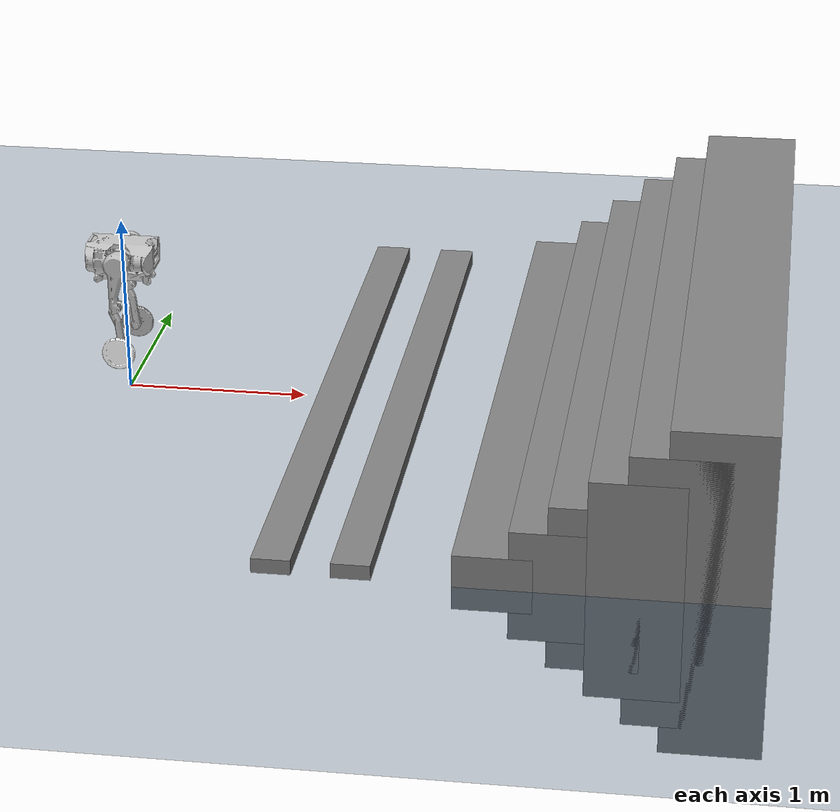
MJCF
<mujoco model="ddt scene">
  <include file="robot.xml"/>

  <statistic center="0 0 0.1" extent="0.8"/>

  <visual>
    <headlight diffuse="0.6 0.6 0.6" ambient="0.3 0.3 0.3" specular="0 0 0"/>
    <rgba haze="0.15 0.25 0.35 1"/>
    <global azimuth="-130" elevation="-20"/>
  </visual>

  <asset>
    <texture type="skybox" builtin="gradient" rgb1="0.3 0.5 0.7" rgb2="0 0 0" width="512" height="3072"/>
    <texture type="2d" name="groundplane" builtin="checker" mark="edge" rgb1="0.2 0.3 0.4" rgb2="0.1 0.2 0.3"
      markrgb="0.8 0.8 0.8" width="300" height="300"/>
    <material name="groundplane" texture="groundplane" texuniform="true" texrepeat="5 5" reflectance="0.2"/>
  </asset>

  <worldbody>
    <light pos="0 0 1.5" dir="0 0 -1" directional="true"/>
    <geom name="floor" size="0 0 0.05" type="plane" material="groundplane"/>

    <geom pos="1.2 0 0.04" type="box"  size="0.1 2 0.04" quat="1.0 0 0 0"/>
    <geom pos="1.6 0 0.04" type="box"  size="0.1 2 0.04" quat="1.0 0 0 0"/>

    <geom pos="2.3 0 0.02" type="box"  size="0.2 2 0.15" quat="1.0 0 0 0"/>
    <geom pos="2.6 0 0.02" type="box"  size="0.22 2 0.3" quat="1.0 0 0 0"/>
    <geom pos="2.8 0 0.02" type="box"  size="0.23 2 0.45" quat="1.0 0 0 0"/>
    <geom pos="3 0 0.02" type="box"  size="0.24 2 0.6" quat="1.0 0 0 0"/>
    <geom pos="3.2 0 0.02" type="box"  size="0.25 2 0.75" quat="1.0 0 0 0"/>
    <geom pos="3.4 0 0.02" type="box"  size="0.26 2 0.9" quat="1.0 0 0 0"/>
  </worldbody>
</mujoco>

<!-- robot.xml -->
<mujoco model="d1h_description">
  <compiler angle="radian" meshdir="../meshes/" autolimits="true" />
  <option cone="elliptic" impratio="100" />
  <default>
    <default class="d1h">
      <geom friction="0.4" margin="0.001" condim="1"/>
      <joint axis="0 1 0" damping="0.1" armature="0.01" frictionloss="0.2"/>
      <default class="visual">
        <geom type="mesh" contype="0" conaffinity="0" group="2" density="0"/>
      </default>
      <default class="collision">
        <geom group="3" />
      </default>
    </default>
  </default>

  <asset>
    <mesh name="base_link" file="base_link.STL"/>
    <mesh name="funtion_Link" file="funtion_Link.STL"/>
    <mesh name="docking_Link" file="docking_Link.STL"/>
    <mesh name="L_hip" file="L_hip.STL"/>
    <mesh name="L_thigh" file="L_thigh.STL"/>
    <mesh name="L_calf" file="L_calf.STL"/>
    <mesh name="L_foot" file="L_foot.STL"/>
    <mesh name="R_hip" file="R_hip.STL"/>
    <mesh name="R_thigh" file="R_thigh.STL"/>
    <mesh name="R_calf" file="R_calf.STL"/>
    <mesh name="R_foot" file="R_foot.STL"/>
  </asset>

  <worldbody>
    <body name="base_link" pos="0 0 0.8" childclass="d1h">
      <inertial pos="0.00652471 0.00180904 -0.0146554" quat="0.00501199 0.705938 -0.0170284 0.708051" mass="11.3274" diaginertia="0.231094 0.222595 0.0974676"/>
      <site name="trunk_imu" size="0.01"/>
      <joint name="floating_base_joint" type="free" limited="false" actuatorfrclimited="false"/>
      <geom type="mesh" class="visual" rgba="0.75294 0.75294 0.75294 1" mesh="base_link"/>
      <geom size="0.1375 0.075 0.0875" type="box" class="collision" rgba="0.75294 0.75294 0.75294 1"/>
      <geom size="0.155 0.06 0.03" pos="0 0 -0.12" type="box" class="collision" rgba="0.75294 0.75294 0.75294 1"/>
      <geom pos="0.1545 0 0" quat="1 0 0 0" type="mesh" rgba="0.75294 0.75294 0.75294 1" mesh="funtion_Link"/>
      <geom size="0.02475 0.075 0.0875" pos="0.1625 0 0" type="box" class="collision" rgba="0.75294 0.75294 0.75294 1"/>
      <geom pos="-0.187 0 0" quat="1 0 0 0" type="mesh" rgba="0.75294 0.75294 0.75294 1" mesh="docking_Link"/>
      <geom size="0.04255 0.075 0.0875" pos="-0.1805 0 0" type="box" class="collision" rgba="0.75294 0.75294 0.75294 1"/>
      <body name="FL_hip" pos="0.0945 0.0775 0" quat="0.499998 0.5 0.500002 0.5">
        <inertial pos="-0.0181435 -7.96e-06 -0.0936513" quat="0.999969 0.002505 0.00743808 -9.41679e-05" mass="1.69464" diaginertia="0.00379302 0.0027607 0.00214447"/>
        <joint name="FL_hip_joint" pos="0 0 0" axis="0 0 1" range="-0.785398 0.785398" actuatorfrcrange="-80 80"/>
        <geom type="mesh" class="visual" rgba="0.75294 0.75294 0.75294 1" mesh="L_hip"/>
        <body name="FL_thigh" pos="0.0905 0 -0.0945" quat="0.500098 -0.5001 0.499902 -0.4999">
          <inertial pos="0.0289509 0.00356333 -0.0281156" quat="-0.0769104 0.652025 5.23527e-05 0.754286" mass="2.55232" diaginertia="0.0182972 0.0174693 0.00380065"/>
          <joint name="FL_thigh_joint" pos="0 0 0" axis="0 0 1" range="-1.8326 3.40339" actuatorfrcrange="-80 80"/>
          <geom type="mesh" class="visual" rgba="0.75294 0.75294 0.75294 1" mesh="L_thigh"/>
          <geom size="0.13 0.045 0.025" pos="0.06 0.02 0" quat="0.991445 0 0 0.130526" type="box" class="collision" rgba="0.75294 0.75294 0.75294 1"/>
          <body name="FL_calf" pos="0.25 0 0">
            <inertial pos="0.125063 0.00606587 0.00312587" quat="-0.0425827 0.690156 -0.0920102 0.716523" mass="0.46345" diaginertia="0.00494513 0.00490922 0.000208685"/>
            <joint name="FL_calf_joint" pos="0 0 0" axis="0 0 1" range="-2.775 -0.855" actuatorfrcrange="-80 80"/>
            <geom type="mesh" class="visual" rgba="0.75294 0.75294 0.75294 1" mesh="L_calf"/>
            <geom size="0.12 0.02 0.025" pos="0.15 0.01 0" quat="0.9992 0 0 -0.0399893" type="box" class="collision" rgba="0.75294 0.75294 0.75294 1"/>
            <body name="FL_foot" pos="0.25 0 0.052166">
              <inertial pos="-2.82e-06 0 -0.00091845" quat="0.334356 0.623085 -0.334302 0.623067" mass="1.6631" diaginertia="0.00760863 0.00398501 0.00393673"/>
              <joint name="FL_foot_joint" pos="0 0 0" axis="0 0 1" range="-1000000 1000000" actuatorfrcrange="-12 12"/>
              <geom type="mesh" class="visual" rgba="0.698039 0.698039 0.698039 1" mesh="L_foot"/>
              <geom size="0.087 0.02" type="cylinder" class="collision" rgba="0.698039 0.698039 0.698039 1"/>
            </body>
          </body>
        </body>
      </body>
      <body name="FR_hip" pos="0.0945 -0.0775 0" quat="0.499998 0.5 0.500002 0.5">
        <inertial pos="0.0181435 -8e-06 -0.0936513" quat="0.999969 0.002505 -0.00743808 9.41679e-05" mass="1.69464" diaginertia="0.00379302 0.0027607 0.00214447"/>
        <joint name="FR_hip_joint" pos="0 0 0" axis="0 0 1" range="-0.785398 0.785398" actuatorfrcrange="-80 80"/>
        <geom type="mesh" class="visual" rgba="0.75294 0.75294 0.75294 1" mesh="R_hip"/>
        <body name="FR_thigh" pos="-0.0905 0 -0.0945" quat="0.499898 -0.4999 0.500102 -0.5001">
          <inertial pos="0.0291816 0.00370278 0.0281157" quat="0.00133055 0.754556 0.0787582 0.651491" mass="2.55232" diaginertia="0.0182666 0.0174178 0.0038092"/>
          <joint name="FR_thigh_joint" pos="0 0 0" axis="0 0 1" range="-1.8326 3.40339" actuatorfrcrange="-80 80"/>
          <geom type="mesh" class="visual" rgba="0.752941 0.752941 0.752941 1" mesh="R_thigh"/>
          <geom size="0.13 0.045 0.025" pos="0.06 0.02 0" quat="0.991445 0 0 0.130526" type="box" class="collision" rgba="0.752941 0.752941 0.752941 1"/>
          <body name="FR_calf" pos="0.25 0 0">
            <inertial pos="0.125064 0.00606606 -0.0031258" quat="0.0919975 0.716523 0.0425713 0.690159" mass="0.463455" diaginertia="0.00494517 0.00490926 0.000208687"/>
            <joint name="FR_calf_joint" pos="0 0 0" axis="0 0 1" range="-2.775 -0.855" actuatorfrcrange="-80 80"/>
            <geom type="mesh" class="visual" rgba="0.752941 0.752941 0.752941 1" mesh="R_calf"/>
            <geom size="0.12 0.02 0.025" pos="0.15 0.01 0" quat="0.9992 0 0 -0.0399893" type="box" class="collision" rgba="0.752941 0.752941 0.752941 1"/>
            <body name="FR_foot" pos="0.25 0 -0.052166" quat="0.363988 0 0 0.931404">
              <inertial pos="-2.78e-06 0 0.00091859" quat="0.333846 0.623312 -0.3339 0.62333" mass="1.6631" diaginertia="0.00760867 0.00398497 0.0039368"/>
              <joint name="FR_foot_joint" pos="0 0 0" axis="0 0 1" range="-1000000 1000000" actuatorfrcrange="-12 12"/>
              <geom type="mesh" class="visual" rgba="1 1 1 1" mesh="R_foot"/>
              <geom size="0.087 0.02" type="cylinder" class="collision" rgba="1 1 1 1"/>
            </body>
          </body>
        </body>
      </body>
    </body>
  </worldbody>

  <actuator>
    <motor name="FL_hip" joint="FL_hip_joint" />
    <motor name="FL_thigh" joint="FL_thigh_joint" />
    <motor name="FL_calf" joint="FL_calf_joint" />
    <motor name="FL_foot" joint="FL_foot_joint" />

    <motor name="FR_hip" joint="FR_hip_joint" />
    <motor name="FR_thigh" joint="FR_thigh_joint" />
    <motor name="FR_calf" joint="FR_calf_joint" />
    <motor name="FR_foot" joint="FR_foot_joint" />
  </actuator>
  <sensor>
    <jointpos name="FL_hip_pos" joint="FL_hip_joint" />
    <jointpos name="FL_thigh_pos" joint="FL_thigh_joint" />
    <jointpos name="FL_calf_pos" joint="FL_calf_joint" />
    <jointpos name="FL_foot_pos" joint="FL_foot_joint" />

    <jointpos name="FR_hip_pos" joint="FR_hip_joint" />
    <jointpos name="FR_thigh_pos" joint="FR_thigh_joint" />
    <jointpos name="FR_calf_pos" joint="FR_calf_joint" />
    <jointpos name="FR_foot_pos" joint="FR_foot_joint" />

    <jointvel name="FL_hip_vel" joint="FL_hip_joint" />
    <jointvel name="FL_thigh_vel" joint="FL_thigh_joint" />
    <jointvel name="FL_calf_vel" joint="FL_calf_joint" />
    <jointvel name="FL_foot_vel" joint="FL_foot_joint" />

    <jointvel name="FR_hip_vel" joint="FR_hip_joint" />
    <jointvel name="FR_thigh_vel" joint="FR_thigh_joint" />
    <jointvel name="FR_calf_vel" joint="FR_calf_joint" />
    <jointvel name="FR_foot_vel" joint="FR_foot_joint" />

    <jointactuatorfrc name="FL_hip_torque" joint="FL_hip_joint" noise="0.01" />
    <jointactuatorfrc name="FL_thigh_torque" joint="FL_thigh_joint" noise="0.01" />
    <jointactuatorfrc name="FL_calf_torque" joint="FL_calf_joint" noise="0.01" />
    <jointactuatorfrc name="FL_foot_torque" joint="FL_foot_joint" noise="0.01" />

    <jointactuatorfrc name="FR_hip_torque" joint="FR_hip_joint" noise="0.01" />
    <jointactuatorfrc name="FR_thigh_torque" joint="FR_thigh_joint" noise="0.01" />
    <jointactuatorfrc name="FR_calf_torque" joint="FR_calf_joint" noise="0.01" />
    <jointactuatorfrc name="FR_foot_torque" joint="FR_foot_joint" noise="0.01" />

    <framequat name="trunk_quat" objtype="site" objname="trunk_imu" />
    <gyro name="trunk_gyro" site="trunk_imu" />
    <accelerometer name="trunk_accel" site="trunk_imu" />

    <framepos name="frame_pos" objtype="site" objname="trunk_imu" />
    <framelinvel name="frame_vel" objtype="site" objname="trunk_imu" />
  </sensor>

</mujoco>
